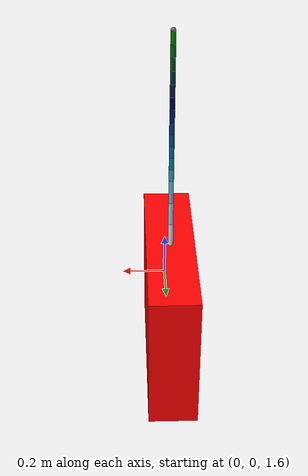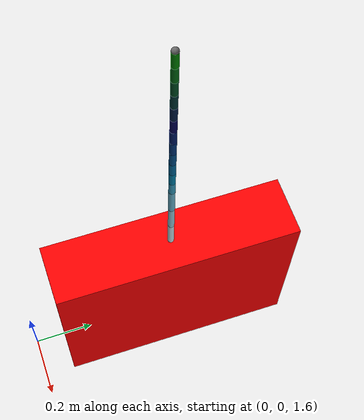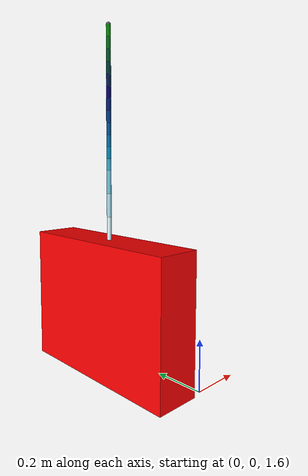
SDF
<sdf version='1.6'>
	<model name='example_rope'>
  <link name="example_rope_capsule_1">
      <pose> 0 0.5 3.0 0 0 0</pose>
      <inertial>
        <pose frame=''>0 0 -0.025 0 0 0</pose>
        <mass>0.02</mass>
        <inertia>
          <ixx>4.666666666666667e-06</ixx>
          <ixy>0</ixy>
          <ixz>0</ixz>
          <iyy>4.666666666666667e-06</iyy>
          <iyz>0</iyz>
          <izz>1.0000000000000002e-06</izz>
        </inertia>
      </inertial>
      <visual name='cylinder'>
        <pose frame=''> 0 0 -0.025 0 0 0 </pose>
        <geometry>
          <cylinder>
          <radius>0.01</radius>
          <length>0.05</length>
          </cylinder>
        </geometry>
        <material>
          <diffuse>0.0 0.5 0.0 1.0</diffuse>
        </material>
      </visual>

      <visual name='ball_1'>
        <pose frame=''> 0 0 0 0 0 0 </pose>
        <geometry>
          <sphere>
          <radius>0.01</radius>
          </sphere>
        </geometry>
        <material>
          <diffuse>0.4 0.4 0.4 1.0</diffuse>
        </material>
      </visual>

      <visual name='ball_2'>
        <pose frame=''> 0 0 -0.05 0 0 0 </pose>
        <geometry>
          <sphere>
          <radius>0.01</radius>
          </sphere>
        </geometry>
        <material>
          <diffuse>0.4 0.4 0.4 1.0</diffuse>
        </material>
      </visual>

      <collision name='example_rope_capsule_1_cylinder'>
        <pose frame=''> 0 0 -0.025 0 0 0 </pose>
        <geometry>
          <cylinder>
          <radius>0.01</radius>
          <length>0.05</length>
          </cylinder>
        </geometry>

        <surface>
          <friction>
          <ode>
            <mu>0.5</mu>
            <mu2>0.5</mu2>
          </ode>
          </friction>
        </surface>
      </collision>

      <!-- TODO: Put collision here -->
  </link>
  <link name="example_rope_capsule_2">
      <pose> 0 0.5 2.95 0 0 0</pose>
      <inertial>
        <pose frame=''>0 0 -0.025 0 0 0</pose>
        <mass>0.02</mass>
        <inertia>
          <ixx>4.666666666666667e-06</ixx>
          <ixy>0</ixy>
          <ixz>0</ixz>
          <iyy>4.666666666666667e-06</iyy>
          <iyz>0</iyz>
          <izz>1.0000000000000002e-06</izz>
        </inertia>
      </inertial>
      <visual name='cylinder'>
        <pose frame=''> 0 0 -0.025 0 0 0 </pose>
        <geometry>
          <cylinder>
          <radius>0.01</radius>
          <length>0.05</length>
          </cylinder>
        </geometry>
        <material>
          <diffuse>0.0 0.4 0.06666666666666667 1.0</diffuse>
        </material>
      </visual>

      <visual name='ball_1'>
        <pose frame=''> 0 0 0 0 0 0 </pose>
        <geometry>
          <sphere>
          <radius>0.01</radius>
          </sphere>
        </geometry>
        <material>
          <diffuse>0.4 0.4 0.4 1.0</diffuse>
        </material>
      </visual>

      <visual name='ball_2'>
        <pose frame=''> 0 0 -0.05 0 0 0 </pose>
        <geometry>
          <sphere>
          <radius>0.01</radius>
          </sphere>
        </geometry>
        <material>
          <diffuse>0.4 0.4 0.4 1.0</diffuse>
        </material>
      </visual>

      <collision name='example_rope_capsule_2_cylinder'>
        <pose frame=''> 0 0 -0.025 0 0 0 </pose>
        <geometry>
          <cylinder>
          <radius>0.01</radius>
          <length>0.05</length>
          </cylinder>
        </geometry>

        <surface>
          <friction>
          <ode>
            <mu>0.5</mu>
            <mu2>0.5</mu2>
          </ode>
          </friction>
        </surface>
      </collision>

      <!-- TODO: Put collision here -->
  </link>
  <link name="example_rope_capsule_1_extra">
    <pose> 0 0.5 2.95 0 0 0</pose>
    <inertial>
      <!-- HACK: inertias are not consistent -->
      <mass>1e-6</mass>
      <inertia>
        <ixx>1e-6</ixx>
        <ixy>0</ixy>
        <ixz>0</ixz>
        <iyy>1e-6</iyy>
        <iyz>0</iyz>
        <izz>1e-6</izz>
      </inertia>
    </inertial>
  </link>
  <joint name="example_rope_capsule_1_example_rope_capsule_2_joint_x" type="revolute">
    <pose> 0 0 0 0 0 0 </pose>
    <child>example_rope_capsule_2</child>
    <parent>example_rope_capsule_1_extra</parent>
    <axis>
      <xyz> 1 0 0 </xyz>
      <limit>
        <effort>0</effort>
        <lower>-1</lower>
        <upper>1</upper>
      </limit>
      <dynamics>
        <damping> 0.001 </damping>
        <friction> 0 </friction>
        <spring_reference> 0 </spring_reference>
        <spring_stiffness> 0 </spring_stiffness>
      </dynamics>
      <use_parent_model_frame>1</use_parent_model_frame>
    </axis>
  </joint>

  <joint name="example_rope_capsule_1_example_rope_capsule_2_joint_y" type="revolute">
    <pose> 0 0 0 0 0 0 </pose>
    <child>example_rope_capsule_1_extra</child>
    <parent>example_rope_capsule_1</parent>
    <axis>
      <xyz> 0 1 0 </xyz>
      <limit>
        <effort>0</effort>
        <lower>-1</lower>
        <upper>1</upper>
      </limit>
      <dynamics>
        <damping> 0.001 </damping>
        <friction> 0 </friction>
        <spring_reference> 0 </spring_reference>
        <spring_stiffness> 0 </spring_stiffness>
      </dynamics>
      <use_parent_model_frame>1</use_parent_model_frame>
    </axis>
  </joint>
  <link name="example_rope_capsule_3">
      <pose> 0 0.5 2.9000000000000004 0 0 0</pose>
      <inertial>
        <pose frame=''>0 0 -0.025 0 0 0</pose>
        <mass>0.02</mass>
        <inertia>
          <ixx>4.666666666666667e-06</ixx>
          <ixy>0</ixy>
          <ixz>0</ixz>
          <iyy>4.666666666666667e-06</iyy>
          <iyz>0</iyz>
          <izz>1.0000000000000002e-06</izz>
        </inertia>
      </inertial>
      <visual name='cylinder'>
        <pose frame=''> 0 0 -0.025 0 0 0 </pose>
        <geometry>
          <cylinder>
          <radius>0.01</radius>
          <length>0.05</length>
          </cylinder>
        </geometry>
        <material>
          <diffuse>0.0 0.3 0.13333333333333333 1.0</diffuse>
        </material>
      </visual>

      <visual name='ball_1'>
        <pose frame=''> 0 0 0 0 0 0 </pose>
        <geometry>
          <sphere>
          <radius>0.01</radius>
          </sphere>
        </geometry>
        <material>
          <diffuse>0.4 0.4 0.4 1.0</diffuse>
        </material>
      </visual>

      <visual name='ball_2'>
        <pose frame=''> 0 0 -0.05 0 0 0 </pose>
        <geometry>
          <sphere>
          <radius>0.01</radius>
          </sphere>
        </geometry>
        <material>
          <diffuse>0.4 0.4 0.4 1.0</diffuse>
        </material>
      </visual>

      <collision name='example_rope_capsule_3_cylinder'>
        <pose frame=''> 0 0 -0.025 0 0 0 </pose>
        <geometry>
          <cylinder>
          <radius>0.01</radius>
          <length>0.05</length>
          </cylinder>
        </geometry>

        <surface>
          <friction>
          <ode>
            <mu>0.5</mu>
            <mu2>0.5</mu2>
          </ode>
          </friction>
        </surface>
      </collision>

      <!-- TODO: Put collision here -->
  </link>
  <link name="example_rope_capsule_2_extra">
    <pose> 0 0.5 2.9000000000000004 0 0 0</pose>
    <inertial>
      <!-- HACK: inertias are not consistent -->
      <mass>1e-6</mass>
      <inertia>
        <ixx>1e-6</ixx>
        <ixy>0</ixy>
        <ixz>0</ixz>
        <iyy>1e-6</iyy>
        <iyz>0</iyz>
        <izz>1e-6</izz>
      </inertia>
    </inertial>
  </link>
  <joint name="example_rope_capsule_2_example_rope_capsule_3_joint_x" type="revolute">
    <pose> 0 0 0 0 0 0 </pose>
    <child>example_rope_capsule_3</child>
    <parent>example_rope_capsule_2_extra</parent>
    <axis>
      <xyz> 1 0 0 </xyz>
      <limit>
        <effort>0</effort>
        <lower>-1</lower>
        <upper>1</upper>
      </limit>
      <dynamics>
        <damping> 0.001 </damping>
        <friction> 0 </friction>
        <spring_reference> 0 </spring_reference>
        <spring_stiffness> 0 </spring_stiffness>
      </dynamics>
      <use_parent_model_frame>1</use_parent_model_frame>
    </axis>
  </joint>

  <joint name="example_rope_capsule_2_example_rope_capsule_3_joint_y" type="revolute">
    <pose> 0 0 0 0 0 0 </pose>
    <child>example_rope_capsule_2_extra</child>
    <parent>example_rope_capsule_2</parent>
    <axis>
      <xyz> 0 1 0 </xyz>
      <limit>
        <effort>0</effort>
        <lower>-1</lower>
        <upper>1</upper>
      </limit>
      <dynamics>
        <damping> 0.001 </damping>
        <friction> 0 </friction>
        <spring_reference> 0 </spring_reference>
        <spring_stiffness> 0 </spring_stiffness>
      </dynamics>
      <use_parent_model_frame>1</use_parent_model_frame>
    </axis>
  </joint>
  <link name="example_rope_capsule_4">
      <pose> 0 0.5 2.8500000000000005 0 0 0</pose>
      <inertial>
        <pose frame=''>0 0 -0.025 0 0 0</pose>
        <mass>0.02</mass>
        <inertia>
          <ixx>4.666666666666667e-06</ixx>
          <ixy>0</ixy>
          <ixz>0</ixz>
          <iyy>4.666666666666667e-06</iyy>
          <iyz>0</iyz>
          <izz>1.0000000000000002e-06</izz>
        </inertia>
      </inertial>
      <visual name='cylinder'>
        <pose frame=''> 0 0 -0.025 0 0 0 </pose>
        <geometry>
          <cylinder>
          <radius>0.01</radius>
          <length>0.05</length>
          </cylinder>
        </geometry>
        <material>
          <diffuse>0.0 0.19999999999999996 0.2 1.0</diffuse>
        </material>
      </visual>

      <visual name='ball_1'>
        <pose frame=''> 0 0 0 0 0 0 </pose>
        <geometry>
          <sphere>
          <radius>0.01</radius>
          </sphere>
        </geometry>
        <material>
          <diffuse>0.4 0.4 0.4 1.0</diffuse>
        </material>
      </visual>

      <visual name='ball_2'>
        <pose frame=''> 0 0 -0.05 0 0 0 </pose>
        <geometry>
          <sphere>
          <radius>0.01</radius>
          </sphere>
        </geometry>
        <material>
          <diffuse>0.4 0.4 0.4 1.0</diffuse>
        </material>
      </visual>

      <collision name='example_rope_capsule_4_cylinder'>
        <pose frame=''> 0 0 -0.025 0 0 0 </pose>
        <geometry>
          <cylinder>
          <radius>0.01</radius>
          <length>0.05</length>
          </cylinder>
        </geometry>

        <surface>
          <friction>
          <ode>
            <mu>0.5</mu>
            <mu2>0.5</mu2>
          </ode>
          </friction>
        </surface>
      </collision>

      <!-- TODO: Put collision here -->
  </link>
  <link name="example_rope_capsule_3_extra">
    <pose> 0 0.5 2.8500000000000005 0 0 0</pose>
    <inertial>
      <!-- HACK: inertias are not consistent -->
      <mass>1e-6</mass>
      <inertia>
        <ixx>1e-6</ixx>
        <ixy>0</ixy>
        <ixz>0</ixz>
        <iyy>1e-6</iyy>
        <iyz>0</iyz>
        <izz>1e-6</izz>
      </inertia>
    </inertial>
  </link>
  <joint name="example_rope_capsule_3_example_rope_capsule_4_joint_x" type="revolute">
    <pose> 0 0 0 0 0 0 </pose>
    <child>example_rope_capsule_4</child>
    <parent>example_rope_capsule_3_extra</parent>
    <axis>
      <xyz> 1 0 0 </xyz>
      <limit>
        <effort>0</effort>
        <lower>-1</lower>
        <upper>1</upper>
      </limit>
      <dynamics>
        <damping> 0.001 </damping>
        <friction> 0 </friction>
        <spring_reference> 0 </spring_reference>
        <spring_stiffness> 0 </spring_stiffness>
      </dynamics>
      <use_parent_model_frame>1</use_parent_model_frame>
    </axis>
  </joint>

  <joint name="example_rope_capsule_3_example_rope_capsule_4_joint_y" type="revolute">
    <pose> 0 0 0 0 0 0 </pose>
    <child>example_rope_capsule_3_extra</child>
    <parent>example_rope_capsule_3</parent>
    <axis>
      <xyz> 0 1 0 </xyz>
      <limit>
        <effort>0</effort>
        <lower>-1</lower>
        <upper>1</upper>
      </limit>
      <dynamics>
        <damping> 0.001 </damping>
        <friction> 0 </friction>
        <spring_reference> 0 </spring_reference>
        <spring_stiffness> 0 </spring_stiffness>
      </dynamics>
      <use_parent_model_frame>1</use_parent_model_frame>
    </axis>
  </joint>
  <link name="example_rope_capsule_5">
      <pose> 0 0.5 2.8000000000000007 0 0 0</pose>
      <inertial>
        <pose frame=''>0 0 -0.025 0 0 0</pose>
        <mass>0.02</mass>
        <inertia>
          <ixx>4.666666666666667e-06</ixx>
          <ixy>0</ixy>
          <ixz>0</ixz>
          <iyy>4.666666666666667e-06</iyy>
          <iyz>0</iyz>
          <izz>1.0000000000000002e-06</izz>
        </inertia>
      </inertial>
      <visual name='cylinder'>
        <pose frame=''> 0 0 -0.025 0 0 0 </pose>
        <geometry>
          <cylinder>
          <radius>0.01</radius>
          <length>0.05</length>
          </cylinder>
        </geometry>
        <material>
          <diffuse>0.0 0.09999999999999998 0.26666666666666666 1.0</diffuse>
        </material>
      </visual>

      <visual name='ball_1'>
        <pose frame=''> 0 0 0 0 0 0 </pose>
        <geometry>
          <sphere>
          <radius>0.01</radius>
          </sphere>
        </geometry>
        <material>
          <diffuse>0.4 0.4 0.4 1.0</diffuse>
        </material>
      </visual>

      <visual name='ball_2'>
        <pose frame=''> 0 0 -0.05 0 0 0 </pose>
        <geometry>
          <sphere>
          <radius>0.01</radius>
          </sphere>
        </geometry>
        <material>
          <diffuse>0.4 0.4 0.4 1.0</diffuse>
        </material>
      </visual>

      <collision name='example_rope_capsule_5_cylinder'>
        <pose frame=''> 0 0 -0.025 0 0 0 </pose>
        <geometry>
          <cylinder>
          <radius>0.01</radius>
          <length>0.05</length>
          </cylinder>
        </geometry>

        <surface>
          <friction>
          <ode>
            <mu>0.5</mu>
            <mu2>0.5</mu2>
          </ode>
          </friction>
        </surface>
      </collision>

      <!-- TODO: Put collision here -->
  </link>
  <link name="example_rope_capsule_4_extra">
    <pose> 0 0.5 2.8000000000000007 0 0 0</pose>
    <inertial>
      <!-- HACK: inertias are not consistent -->
      <mass>1e-6</mass>
      <inertia>
        <ixx>1e-6</ixx>
        <ixy>0</ixy>
        <ixz>0</ixz>
        <iyy>1e-6</iyy>
        <iyz>0</iyz>
        <izz>1e-6</izz>
      </inertia>
    </inertial>
  </link>
  <joint name="example_rope_capsule_4_example_rope_capsule_5_joint_x" type="revolute">
    <pose> 0 0 0 0 0 0 </pose>
    <child>example_rope_capsule_5</child>
    <parent>example_rope_capsule_4_extra</parent>
    <axis>
      <xyz> 1 0 0 </xyz>
      <limit>
        <effort>0</effort>
        <lower>-1</lower>
        <upper>1</upper>
      </limit>
      <dynamics>
        <damping> 0.001 </damping>
        <friction> 0 </friction>
        <spring_reference> 0 </spring_reference>
        <spring_stiffness> 0 </spring_stiffness>
      </dynamics>
      <use_parent_model_frame>1</use_parent_model_frame>
    </axis>
  </joint>

  <joint name="example_rope_capsule_4_example_rope_capsule_5_joint_y" type="revolute">
    <pose> 0 0 0 0 0 0 </pose>
    <child>example_rope_capsule_4_extra</child>
    <parent>example_rope_capsule_4</parent>
    <axis>
      <xyz> 0 1 0 </xyz>
      <limit>
        <effort>0</effort>
        <lower>-1</lower>
        <upper>1</upper>
      </limit>
      <dynamics>
        <damping> 0.001 </damping>
        <friction> 0 </friction>
        <spring_reference> 0 </spring_reference>
        <spring_stiffness> 0 </spring_stiffness>
      </dynamics>
      <use_parent_model_frame>1</use_parent_model_frame>
    </axis>
  </joint>
  <link name="example_rope_capsule_6">
      <pose> 0 0.5 2.750000000000001 0 0 0</pose>
      <inertial>
        <pose frame=''>0 0 -0.025 0 0 0</pose>
        <mass>0.02</mass>
        <inertia>
          <ixx>4.666666666666667e-06</ixx>
          <ixy>0</ixy>
          <ixz>0</ixz>
          <iyy>4.666666666666667e-06</iyy>
          <iyz>0</iyz>
          <izz>1.0000000000000002e-06</izz>
        </inertia>
      </inertial>
      <visual name='cylinder'>
        <pose frame=''> 0 0 -0.025 0 0 0 </pose>
        <geometry>
          <cylinder>
          <radius>0.01</radius>
          <length>0.05</length>
          </cylinder>
        </geometry>
        <material>
          <diffuse>0.0 0.0 0.3333333333333333 1.0</diffuse>
        </material>
      </visual>

      <visual name='ball_1'>
        <pose frame=''> 0 0 0 0 0 0 </pose>
        <geometry>
          <sphere>
          <radius>0.01</radius>
          </sphere>
        </geometry>
        <material>
          <diffuse>0.4 0.4 0.4 1.0</diffuse>
        </material>
      </visual>

      <visual name='ball_2'>
        <pose frame=''> 0 0 -0.05 0 0 0 </pose>
        <geometry>
          <sphere>
          <radius>0.01</radius>
          </sphere>
        </geometry>
        <material>
          <diffuse>0.4 0.4 0.4 1.0</diffuse>
        </material>
      </visual>

      <collision name='example_rope_capsule_6_cylinder'>
        <pose frame=''> 0 0 -0.025 0 0 0 </pose>
        <geometry>
          <cylinder>
          <radius>0.01</radius>
          <length>0.05</length>
          </cylinder>
        </geometry>

        <surface>
          <friction>
          <ode>
            <mu>0.5</mu>
            <mu2>0.5</mu2>
          </ode>
          </friction>
        </surface>
      </collision>

      <!-- TODO: Put collision here -->
  </link>
  <link name="example_rope_capsule_5_extra">
    <pose> 0 0.5 2.750000000000001 0 0 0</pose>
    <inertial>
      <!-- HACK: inertias are not consistent -->
      <mass>1e-6</mass>
      <inertia>
        <ixx>1e-6</ixx>
        <ixy>0</ixy>
        <ixz>0</ixz>
        <iyy>1e-6</iyy>
        <iyz>0</iyz>
        <izz>1e-6</izz>
      </inertia>
    </inertial>
  </link>
  <joint name="example_rope_capsule_5_example_rope_capsule_6_joint_x" type="revolute">
    <pose> 0 0 0 0 0 0 </pose>
    <child>example_rope_capsule_6</child>
    <parent>example_rope_capsule_5_extra</parent>
    <axis>
      <xyz> 1 0 0 </xyz>
      <limit>
        <effort>0</effort>
        <lower>-1</lower>
        <upper>1</upper>
      </limit>
      <dynamics>
        <damping> 0.001 </damping>
        <friction> 0 </friction>
        <spring_reference> 0 </spring_reference>
        <spring_stiffness> 0 </spring_stiffness>
      </dynamics>
      <use_parent_model_frame>1</use_parent_model_frame>
    </axis>
  </joint>

  <joint name="example_rope_capsule_5_example_rope_capsule_6_joint_y" type="revolute">
    <pose> 0 0 0 0 0 0 </pose>
    <child>example_rope_capsule_5_extra</child>
    <parent>example_rope_capsule_5</parent>
    <axis>
      <xyz> 0 1 0 </xyz>
      <limit>
        <effort>0</effort>
        <lower>-1</lower>
        <upper>1</upper>
      </limit>
      <dynamics>
        <damping> 0.001 </damping>
        <friction> 0 </friction>
        <spring_reference> 0 </spring_reference>
        <spring_stiffness> 0 </spring_stiffness>
      </dynamics>
      <use_parent_model_frame>1</use_parent_model_frame>
    </axis>
  </joint>
  <link name="example_rope_capsule_7">
      <pose> 0 0.5 2.700000000000001 0 0 0</pose>
      <inertial>
        <pose frame=''>0 0 -0.025 0 0 0</pose>
        <mass>0.02</mass>
        <inertia>
          <ixx>4.666666666666667e-06</ixx>
          <ixy>0</ixy>
          <ixz>0</ixz>
          <iyy>4.666666666666667e-06</iyy>
          <iyz>0</iyz>
          <izz>1.0000000000000002e-06</izz>
        </inertia>
      </inertial>
      <visual name='cylinder'>
        <pose frame=''> 0 0 -0.025 0 0 0 </pose>
        <geometry>
          <cylinder>
          <radius>0.01</radius>
          <length>0.05</length>
          </cylinder>
        </geometry>
        <material>
          <diffuse>0.0 0.10000000000000009 0.4 1.0</diffuse>
        </material>
      </visual>

      <visual name='ball_1'>
        <pose frame=''> 0 0 0 0 0 0 </pose>
        <geometry>
          <sphere>
          <radius>0.01</radius>
          </sphere>
        </geometry>
        <material>
          <diffuse>0.4 0.4 0.4 1.0</diffuse>
        </material>
      </visual>

      <visual name='ball_2'>
        <pose frame=''> 0 0 -0.05 0 0 0 </pose>
        <geometry>
          <sphere>
          <radius>0.01</radius>
          </sphere>
        </geometry>
        <material>
          <diffuse>0.4 0.4 0.4 1.0</diffuse>
        </material>
      </visual>

      <collision name='example_rope_capsule_7_cylinder'>
        <pose frame=''> 0 0 -0.025 0 0 0 </pose>
        <geometry>
          <cylinder>
          <radius>0.01</radius>
          <length>0.05</length>
          </cylinder>
        </geometry>

        <surface>
          <friction>
          <ode>
            <mu>0.5</mu>
            <mu2>0.5</mu2>
          </ode>
          </friction>
        </surface>
      </collision>

      <!-- TODO: Put collision here -->
  </link>
  <link name="example_rope_capsule_6_extra">
    <pose> 0 0.5 2.700000000000001 0 0 0</pose>
    <inertial>
      <!-- HACK: inertias are not consistent -->
      <mass>1e-6</mass>
      <inertia>
        <ixx>1e-6</ixx>
        <ixy>0</ixy>
        <ixz>0</ixz>
        <iyy>1e-6</iyy>
        <iyz>0</iyz>
        <izz>1e-6</izz>
      </inertia>
    </inertial>
  </link>
  <joint name="example_rope_capsule_6_example_rope_capsule_7_joint_x" type="revolute">
    <pose> 0 0 0 0 0 0 </pose>
    <child>example_rope_capsule_7</child>
    <parent>example_rope_capsule_6_extra</parent>
    <axis>
      <xyz> 1 0 0 </xyz>
      <limit>
        <effort>0</effort>
        <lower>-1</lower>
        <upper>1</upper>
      </limit>
      <dynamics>
        <damping> 0.001 </damping>
        <friction> 0 </friction>
        <spring_reference> 0 </spring_reference>
        <spring_stiffness> 0 </spring_stiffness>
      </dynamics>
      <use_parent_model_frame>1</use_parent_model_frame>
    </axis>
  </joint>

  <joint name="example_rope_capsule_6_example_rope_capsule_7_joint_y" type="revolute">
    <pose> 0 0 0 0 0 0 </pose>
    <child>example_rope_capsule_6_extra</child>
    <parent>example_rope_capsule_6</parent>
    <axis>
      <xyz> 0 1 0 </xyz>
      <limit>
        <effort>0</effort>
        <lower>-1</lower>
        <upper>1</upper>
      </limit>
      <dynamics>
        <damping> 0.001 </damping>
        <friction> 0 </friction>
        <spring_reference> 0 </spring_reference>
        <spring_stiffness> 0 </spring_stiffness>
      </dynamics>
      <use_parent_model_frame>1</use_parent_model_frame>
    </axis>
  </joint>
  <link name="example_rope_capsule_8">
      <pose> 0 0.5 2.6500000000000012 0 0 0</pose>
      <inertial>
        <pose frame=''>0 0 -0.025 0 0 0</pose>
        <mass>0.02</mass>
        <inertia>
          <ixx>4.666666666666667e-06</ixx>
          <ixy>0</ixy>
          <ixz>0</ixz>
          <iyy>4.666666666666667e-06</iyy>
          <iyz>0</iyz>
          <izz>1.0000000000000002e-06</izz>
        </inertia>
      </inertial>
      <visual name='cylinder'>
        <pose frame=''> 0 0 -0.025 0 0 0 </pose>
        <geometry>
          <cylinder>
          <radius>0.01</radius>
          <length>0.05</length>
          </cylinder>
        </geometry>
        <material>
          <diffuse>0.0 0.19999999999999996 0.4666666666666667 1.0</diffuse>
        </material>
      </visual>

      <visual name='ball_1'>
        <pose frame=''> 0 0 0 0 0 0 </pose>
        <geometry>
          <sphere>
          <radius>0.01</radius>
          </sphere>
        </geometry>
        <material>
          <diffuse>0.4 0.4 0.4 1.0</diffuse>
        </material>
      </visual>

      <visual name='ball_2'>
        <pose frame=''> 0 0 -0.05 0 0 0 </pose>
        <geometry>
          <sphere>
          <radius>0.01</radius>
          </sphere>
        </geometry>
        <material>
          <diffuse>0.4 0.4 0.4 1.0</diffuse>
        </material>
      </visual>

      <collision name='example_rope_capsule_8_cylinder'>
        <pose frame=''> 0 0 -0.025 0 0 0 </pose>
        <geometry>
          <cylinder>
          <radius>0.01</radius>
          <length>0.05</length>
          </cylinder>
        </geometry>

        <surface>
          <friction>
          <ode>
            <mu>0.5</mu>
            <mu2>0.5</mu2>
          </ode>
          </friction>
        </surface>
      </collision>

      <!-- TODO: Put collision here -->
  </link>
  <link name="example_rope_capsule_7_extra">
    <pose> 0 0.5 2.6500000000000012 0 0 0</pose>
    <inertial>
      <!-- HACK: inertias are not consistent -->
      <mass>1e-6</mass>
      <inertia>
        <ixx>1e-6</ixx>
        <ixy>0</ixy>
        <ixz>0</ixz>
        <iyy>1e-6</iyy>
        <iyz>0</iyz>
        <izz>1e-6</izz>
      </inertia>
    </inertial>
  </link>
  <joint name="example_rope_capsule_7_example_rope_capsule_8_joint_x" type="revolute">
    <pose> 0 0 0 0 0 0 </pose>
    <child>example_rope_capsule_8</child>
    <parent>example_rope_capsule_7_extra</parent>
    <axis>
      <xyz> 1 0 0 </xyz>
      <limit>
        <effort>0</effort>
        <lower>-1</lower>
        <upper>1</upper>
      </limit>
      <dynamics>
        <damping> 0.001 </damping>
        <friction> 0 </friction>
        <spring_reference> 0 </spring_reference>
        <spring_stiffness> 0 </spring_stiffness>
      </dynamics>
      <use_parent_model_frame>1</use_parent_model_frame>
    </axis>
  </joint>

  <joint name="example_rope_capsule_7_example_rope_capsule_8_joint_y" type="revolute">
    <pose> 0 0 0 0 0 0 </pose>
    <child>example_rope_capsule_7_extra</child>
    <parent>example_rope_capsule_7</parent>
    <axis>
      <xyz> 0 1 0 </xyz>
      <limit>
        <effort>0</effort>
        <lower>-1</lower>
        <upper>1</upper>
      </limit>
      <dynamics>
        <damping> 0.001 </damping>
        <friction> 0 </friction>
        <spring_reference> 0 </spring_reference>
        <spring_stiffness> 0 </spring_stiffness>
      </dynamics>
      <use_parent_model_frame>1</use_parent_model_frame>
    </axis>
  </joint>
  <link name="example_rope_capsule_9">
      <pose> 0 0.5 2.6000000000000014 0 0 0</pose>
      <inertial>
        <pose frame=''>0 0 -0.025 0 0 0</pose>
        <mass>0.02</mass>
        <inertia>
          <ixx>4.666666666666667e-06</ixx>
          <ixy>0</ixy>
          <ixz>0</ixz>
          <iyy>4.666666666666667e-06</iyy>
          <iyz>0</iyz>
          <izz>1.0000000000000002e-06</izz>
        </inertia>
      </inertial>
      <visual name='cylinder'>
        <pose frame=''> 0 0 -0.025 0 0 0 </pose>
        <geometry>
          <cylinder>
          <radius>0.01</radius>
          <length>0.05</length>
          </cylinder>
        </geometry>
        <material>
          <diffuse>0.0 0.30000000000000004 0.5333333333333333 1.0</diffuse>
        </material>
      </visual>

      <visual name='ball_1'>
        <pose frame=''> 0 0 0 0 0 0 </pose>
        <geometry>
          <sphere>
          <radius>0.01</radius>
          </sphere>
        </geometry>
        <material>
          <diffuse>0.4 0.4 0.4 1.0</diffuse>
        </material>
      </visual>

      <visual name='ball_2'>
        <pose frame=''> 0 0 -0.05 0 0 0 </pose>
        <geometry>
          <sphere>
          <radius>0.01</radius>
          </sphere>
        </geometry>
        <material>
          <diffuse>0.4 0.4 0.4 1.0</diffuse>
        </material>
      </visual>

      <collision name='example_rope_capsule_9_cylinder'>
        <pose frame=''> 0 0 -0.025 0 0 0 </pose>
        <geometry>
          <cylinder>
          <radius>0.01</radius>
          <length>0.05</length>
          </cylinder>
        </geometry>

        <surface>
          <friction>
          <ode>
            <mu>0.5</mu>
            <mu2>0.5</mu2>
          </ode>
          </friction>
        </surface>
      </collision>

      <!-- TODO: Put collision here -->
  </link>
  <link name="example_rope_capsule_8_extra">
    <pose> 0 0.5 2.6000000000000014 0 0 0</pose>
    <inertial>
      <!-- HACK: inertias are not consistent -->
      <mass>1e-6</mass>
      <inertia>
        <ixx>1e-6</ixx>
        <ixy>0</ixy>
        <ixz>0</ixz>
        <iyy>1e-6</iyy>
        <iyz>0</iyz>
        <izz>1e-6</izz>
      </inertia>
    </inertial>
  </link>
  <joint name="example_rope_capsule_8_example_rope_capsule_9_joint_x" type="revolute">
    <pose> 0 0 0 0 0 0 </pose>
    <child>example_rope_capsule_9</child>
    <parent>example_rope_capsule_8_extra</parent>
    <axis>
      <xyz> 1 0 0 </xyz>
      <limit>
        <effort>0</effort>
        <lower>-1</lower>
        <upper>1</upper>
      </limit>
      <dynamics>
        <damping> 0.001 </damping>
        <friction> 0 </friction>
        <spring_reference> 0 </spring_reference>
        <spring_stiffness> 0 </spring_stiffness>
      </dynamics>
      <use_parent_model_frame>1</use_parent_model_frame>
    </axis>
  </joint>

  <joint name="example_rope_capsule_8_example_rope_capsule_9_joint_y" type="revolute">
    <pose> 0 0 0 0 0 0 </pose>
    <child>example_rope_capsule_8_extra</child>
    <parent>example_rope_capsule_8</parent>
    <axis>
      <xyz> 0 1 0 </xyz>
      <limit>
        <effort>0</effort>
        <lower>-1</lower>
        <upper>1</upper>
      </limit>
      <dynamics>
        <damping> 0.001 </damping>
        <friction> 0 </friction>
        <spring_reference> 0 </spring_reference>
        <spring_stiffness> 0 </spring_stiffness>
      </dynamics>
      <use_parent_model_frame>1</use_parent_model_frame>
    </axis>
  </joint>
  <link name="example_rope_capsule_10">
      <pose> 0 0.5 2.5500000000000016 0 0 0</pose>
      <inertial>
        <pose frame=''>0 0 -0.025 0 0 0</pose>
        <mass>0.02</mass>
        <inertia>
          <ixx>4.666666666666667e-06</ixx>
          <ixy>0</ixy>
          <ixz>0</ixz>
          <iyy>4.666666666666667e-06</iyy>
          <iyz>0</iyz>
          <izz>1.0000000000000002e-06</izz>
        </inertia>
      </inertial>
      <visual name='cylinder'>
        <pose frame=''> 0 0 -0.025 0 0 0 </pose>
        <geometry>
          <cylinder>
          <radius>0.01</radius>
          <length>0.05</length>
          </cylinder>
        </geometry>
        <material>
          <diffuse>0.0 0.3999999999999999 0.6 1.0</diffuse>
        </material>
      </visual>

      <visual name='ball_1'>
        <pose frame=''> 0 0 0 0 0 0 </pose>
        <geometry>
          <sphere>
          <radius>0.01</radius>
          </sphere>
        </geometry>
        <material>
          <diffuse>0.4 0.4 0.4 1.0</diffuse>
        </material>
      </visual>

      <visual name='ball_2'>
        <pose frame=''> 0 0 -0.05 0 0 0 </pose>
        <geometry>
          <sphere>
          <radius>0.01</radius>
          </sphere>
        </geometry>
        <material>
          <diffuse>0.4 0.4 0.4 1.0</diffuse>
        </material>
      </visual>

      <collision name='example_rope_capsule_10_cylinder'>
        <pose frame=''> 0 0 -0.025 0 0 0 </pose>
        <geometry>
          <cylinder>
          <radius>0.01</radius>
          <length>0.05</length>
          </cylinder>
        </geometry>

        <surface>
          <friction>
          <ode>
            <mu>0.5</mu>
            <mu2>0.5</mu2>
          </ode>
          </friction>
        </surface>
      </collision>

      <!-- TODO: Put collision here -->
  </link>
  <link name="example_rope_capsule_9_extra">
    <pose> 0 0.5 2.5500000000000016 0 0 0</pose>
    <inertial>
      <!-- HACK: inertias are not consistent -->
      <mass>1e-6</mass>
      <inertia>
        <ixx>1e-6</ixx>
        <ixy>0</ixy>
        <ixz>0</ixz>
        <iyy>1e-6</iyy>
        <iyz>0</iyz>
        <izz>1e-6</izz>
      </inertia>
    </inertial>
  </link>
  <joint name="example_rope_capsule_9_example_rope_capsule_10_joint_x" type="revolute">
    <pose> 0 0 0 0 0 0 </pose>
    <child>example_rope_capsule_10</child>
    <parent>example_rope_capsule_9_extra</parent>
    <axis>
      <xyz> 1 0 0 </xyz>
      <limit>
        <effort>0</effort>
        <lower>-1</lower>
        <upper>1</upper>
      </limit>
      <dynamics>
        <damping> 0.001 </damping>
        <friction> 0 </friction>
        <spring_reference> 0 </spring_reference>
        <spring_stiffness> 0 </spring_stiffness>
      </dynamics>
      <use_parent_model_frame>1</use_parent_model_frame>
    </axis>
  </joint>

  <joint name="example_rope_capsule_9_example_rope_capsule_10_joint_y" type="revolute">
    <pose> 0 0 0 0 0 0 </pose>
    <child>example_rope_capsule_9_extra</child>
    <parent>example_rope_capsule_9</parent>
    <axis>
      <xyz> 0 1 0 </xyz>
      <limit>
        <effort>0</effort>
        <lower>-1</lower>
        <upper>1</upper>
      </limit>
      <dynamics>
        <damping> 0.001 </damping>
        <friction> 0 </friction>
        <spring_reference> 0 </spring_reference>
        <spring_stiffness> 0 </spring_stiffness>
      </dynamics>
      <use_parent_model_frame>1</use_parent_model_frame>
    </axis>
  </joint>
  <link name="example_rope_capsule_11">
      <pose> 0 0.5 2.5000000000000018 0 0 0</pose>
      <inertial>
        <pose frame=''>0 0 -0.025 0 0 0</pose>
        <mass>0.02</mass>
        <inertia>
          <ixx>4.666666666666667e-06</ixx>
          <ixy>0</ixy>
          <ixz>0</ixz>
          <iyy>4.666666666666667e-06</iyy>
          <iyz>0</iyz>
          <izz>1.0000000000000002e-06</izz>
        </inertia>
      </inertial>
      <visual name='cylinder'>
        <pose frame=''> 0 0 -0.025 0 0 0 </pose>
        <geometry>
          <cylinder>
          <radius>0.01</radius>
          <length>0.05</length>
          </cylinder>
        </geometry>
        <material>
          <diffuse>0.0 0.5 0.6666666666666666 1.0</diffuse>
        </material>
      </visual>

      <visual name='ball_1'>
        <pose frame=''> 0 0 0 0 0 0 </pose>
        <geometry>
          <sphere>
          <radius>0.01</radius>
          </sphere>
        </geometry>
        <material>
          <diffuse>0.4 0.4 0.4 1.0</diffuse>
        </material>
      </visual>

      <visual name='ball_2'>
        <pose frame=''> 0 0 -0.05 0 0 0 </pose>
        <geometry>
          <sphere>
          <radius>0.01</radius>
          </sphere>
        </geometry>
        <material>
          <diffuse>0.4 0.4 0.4 1.0</diffuse>
        </material>
      </visual>

      <collision name='example_rope_capsule_11_cylinder'>
        <pose frame=''> 0 0 -0.025 0 0 0 </pose>
        <geometry>
          <cylinder>
          <radius>0.01</radius>
          <length>0.05</length>
          </cylinder>
        </geometry>

        <surface>
          <friction>
          <ode>
            <mu>0.5</mu>
            <mu2>0.5</mu2>
          </ode>
          </friction>
        </surface>
      </collision>

      <!-- TODO: Put collision here -->
  </link>
  <link name="example_rope_capsule_10_extra">
    <pose> 0 0.5 2.5000000000000018 0 0 0</pose>
    <inertial>
      <!-- HACK: inertias are not consistent -->
      <mass>1e-6</mass>
      <inertia>
        <ixx>1e-6</ixx>
        <ixy>0</ixy>
        <ixz>0</ixz>
        <iyy>1e-6</iyy>
        <iyz>0</iyz>
        <izz>1e-6</izz>
      </inertia>
    </inertial>
  </link>
  <joint name="example_rope_capsule_10_example_rope_capsule_11_joint_x" type="revolute">
    <pose> 0 0 0 0 0 0 </pose>
    <child>example_rope_capsule_11</child>
    <parent>example_rope_capsule_10_extra</parent>
    <axis>
      <xyz> 1 0 0 </xyz>
      <limit>
        <effort>0</effort>
        <lower>-1</lower>
        <upper>1</upper>
      </limit>
      <dynamics>
        <damping> 0.001 </damping>
        <friction> 0 </friction>
        <spring_reference> 0 </spring_reference>
        <spring_stiffness> 0 </spring_stiffness>
      </dynamics>
      <use_parent_model_frame>1</use_parent_model_frame>
    </axis>
  </joint>

  <joint name="example_rope_capsule_10_example_rope_capsule_11_joint_y" type="revolute">
    <pose> 0 0 0 0 0 0 </pose>
    <child>example_rope_capsule_10_extra</child>
    <parent>example_rope_capsule_10</parent>
    <axis>
      <xyz> 0 1 0 </xyz>
      <limit>
        <effort>0</effort>
        <lower>-1</lower>
        <upper>1</upper>
      </limit>
      <dynamics>
        <damping> 0.001 </damping>
        <friction> 0 </friction>
        <spring_reference> 0 </spring_reference>
        <spring_stiffness> 0 </spring_stiffness>
      </dynamics>
      <use_parent_model_frame>1</use_parent_model_frame>
    </axis>
  </joint>
  <link name="example_rope_capsule_12">
      <pose> 0 0.5 2.450000000000002 0 0 0</pose>
      <inertial>
        <pose frame=''>0 0 -0.025 0 0 0</pose>
        <mass>0.02</mass>
        <inertia>
          <ixx>4.666666666666667e-06</ixx>
          <ixy>0</ixy>
          <ixz>0</ixz>
          <iyy>4.666666666666667e-06</iyy>
          <iyz>0</iyz>
          <izz>1.0000000000000002e-06</izz>
        </inertia>
      </inertial>
      <visual name='cylinder'>
        <pose frame=''> 0 0 -0.025 0 0 0 </pose>
        <geometry>
          <cylinder>
          <radius>0.01</radius>
          <length>0.05</length>
          </cylinder>
        </geometry>
        <material>
          <diffuse>0.19999999999999973 0.5999999999999999 0.7333333333333333 1.0</diffuse>
        </material>
      </visual>

      <visual name='ball_1'>
        <pose frame=''> 0 0 0 0 0 0 </pose>
        <geometry>
          <sphere>
          <radius>0.01</radius>
          </sphere>
        </geometry>
        <material>
          <diffuse>0.4 0.4 0.4 1.0</diffuse>
        </material>
      </visual>

      <visual name='ball_2'>
        <pose frame=''> 0 0 -0.05 0 0 0 </pose>
        <geometry>
          <sphere>
          <radius>0.01</radius>
          </sphere>
        </geometry>
        <material>
          <diffuse>0.4 0.4 0.4 1.0</diffuse>
        </material>
      </visual>

      <collision name='example_rope_capsule_12_cylinder'>
        <pose frame=''> 0 0 -0.025 0 0 0 </pose>
        <geometry>
          <cylinder>
          <radius>0.01</radius>
          <length>0.05</length>
          </cylinder>
        </geometry>

        <surface>
          <friction>
          <ode>
            <mu>0.5</mu>
            <mu2>0.5</mu2>
          </ode>
          </friction>
        </surface>
      </collision>

      <!-- TODO: Put collision here -->
  </link>
  <link name="example_rope_capsule_11_extra">
    <pose> 0 0.5 2.450000000000002 0 0 0</pose>
    <inertial>
      <!-- HACK: inertias are not consistent -->
      <mass>1e-6</mass>
      <inertia>
        <ixx>1e-6</ixx>
        <ixy>0</ixy>
        <ixz>0</ixz>
        <iyy>1e-6</iyy>
        <iyz>0</iyz>
        <izz>1e-6</izz>
      </inertia>
    </inertial>
  </link>
  <joint name="example_rope_capsule_11_example_rope_capsule_12_joint_x" type="revolute">
    <pose> 0 0 0 0 0 0 </pose>
    <child>example_rope_capsule_12</child>
    <parent>example_rope_capsule_11_extra</parent>
    <axis>
      <xyz> 1 0 0 </xyz>
      <limit>
        <effort>0</effort>
        <lower>-1</lower>
        <upper>1</upper>
      </limit>
      <dynamics>
        <damping> 0.001 </damping>
        <friction> 0 </friction>
        <spring_reference> 0 </spring_reference>
        <spring_stiffness> 0 </spring_stiffness>
      </dynamics>
      <use_parent_model_frame>1</use_parent_model_frame>
    </axis>
  </joint>

  <joint name="example_rope_capsule_11_example_rope_capsule_12_joint_y" type="revolute">
    <pose> 0 0 0 0 0 0 </pose>
    <child>example_rope_capsule_11_extra</child>
    <parent>example_rope_capsule_11</parent>
    <axis>
      <xyz> 0 1 0 </xyz>
      <limit>
        <effort>0</effort>
        <lower>-1</lower>
        <upper>1</upper>
      </limit>
      <dynamics>
        <damping> 0.001 </damping>
        <friction> 0 </friction>
        <spring_reference> 0 </spring_reference>
        <spring_stiffness> 0 </spring_stiffness>
      </dynamics>
      <use_parent_model_frame>1</use_parent_model_frame>
    </axis>
  </joint>
  <link name="example_rope_capsule_13">
      <pose> 0 0.5 2.400000000000002 0 0 0</pose>
      <inertial>
        <pose frame=''>0 0 -0.05 0 0 0</pose>
        <mass>0.02</mass>
        <inertia>
          <ixx>1.716666666666667e-05</ixx>
          <ixy>0</ixy>
          <ixz>0</ixz>
          <iyy>1.716666666666667e-05</iyy>
          <iyz>0</iyz>
          <izz>1.0000000000000002e-06</izz>
        </inertia>
      </inertial>
      <visual name='cylinder'>
        <pose frame=''> 0 0 -0.05 0 0 0 </pose>
        <geometry>
          <cylinder>
          <radius>0.01</radius>
          <length>0.1</length>
          </cylinder>
        </geometry>
        <material>
          <diffuse>0.40000000000000036 0.7000000000000002 0.8 1.0</diffuse>
        </material>
      </visual>

      <visual name='ball_1'>
        <pose frame=''> 0 0 0 0 0 0 </pose>
        <geometry>
          <sphere>
          <radius>0.01</radius>
          </sphere>
        </geometry>
        <material>
          <diffuse>0.4 0.4 0.4 1.0</diffuse>
        </material>
      </visual>

      <visual name='ball_2'>
        <pose frame=''> 0 0 -0.1 0 0 0 </pose>
        <geometry>
          <sphere>
          <radius>0.01</radius>
          </sphere>
        </geometry>
        <material>
          <diffuse>0.4 0.4 0.4 1.0</diffuse>
        </material>
      </visual>

      <collision name='example_rope_capsule_13_cylinder'>
        <pose frame=''> 0 0 -0.05 0 0 0 </pose>
        <geometry>
          <cylinder>
          <radius>0.01</radius>
          <length>0.1</length>
          </cylinder>
        </geometry>

        <surface>
          <friction>
          <ode>
            <mu>0.5</mu>
            <mu2>0.5</mu2>
          </ode>
          </friction>
        </surface>
      </collision>

      <!-- TODO: Put collision here -->
  </link>
  <link name="example_rope_capsule_12_extra">
    <pose> 0 0.5 2.400000000000002 0 0 0</pose>
    <inertial>
      <!-- HACK: inertias are not consistent -->
      <mass>1e-6</mass>
      <inertia>
        <ixx>1e-6</ixx>
        <ixy>0</ixy>
        <ixz>0</ixz>
        <iyy>1e-6</iyy>
        <iyz>0</iyz>
        <izz>1e-6</izz>
      </inertia>
    </inertial>
  </link>
  <joint name="example_rope_capsule_12_example_rope_capsule_13_joint_x" type="revolute">
    <pose> 0 0 0 0 0 0 </pose>
    <child>example_rope_capsule_13</child>
    <parent>example_rope_capsule_12_extra</parent>
    <axis>
      <xyz> 1 0 0 </xyz>
      <limit>
        <effort>0</effort>
        <lower>-1</lower>
        <upper>1</upper>
      </limit>
      <dynamics>
        <damping> 0.001 </damping>
        <friction> 0 </friction>
        <spring_reference> 0 </spring_reference>
        <spring_stiffness> 0 </spring_stiffness>
      </dynamics>
      <use_parent_model_frame>1</use_parent_model_frame>
    </axis>
  </joint>

  <joint name="example_rope_capsule_12_example_rope_capsule_13_joint_y" type="revolute">
    <pose> 0 0 0 0 0 0 </pose>
    <child>example_rope_capsule_12_extra</child>
    <parent>example_rope_capsule_12</parent>
    <axis>
      <xyz> 0 1 0 </xyz>
      <limit>
        <effort>0</effort>
        <lower>-1</lower>
        <upper>1</upper>
      </limit>
      <dynamics>
        <damping> 0.001 </damping>
        <friction> 0 </friction>
        <spring_reference> 0 </spring_reference>
        <spring_stiffness> 0 </spring_stiffness>
      </dynamics>
      <use_parent_model_frame>1</use_parent_model_frame>
    </axis>
  </joint>
  <link name="example_rope_capsule_14">
      <pose> 0 0.5 2.300000000000002 0 0 0</pose>
      <inertial>
        <pose frame=''>0 0 -0.05 0 0 0</pose>
        <mass>0.02</mass>
        <inertia>
          <ixx>1.716666666666667e-05</ixx>
          <ixy>0</ixy>
          <ixz>0</ixz>
          <iyy>1.716666666666667e-05</iyy>
          <iyz>0</iyz>
          <izz>1.0000000000000002e-06</izz>
        </inertia>
      </inertial>
      <visual name='cylinder'>
        <pose frame=''> 0 0 -0.05 0 0 0 </pose>
        <geometry>
          <cylinder>
          <radius>0.01</radius>
          <length>0.1</length>
          </cylinder>
        </geometry>
        <material>
          <diffuse>0.6000000000000001 0.8 0.8666666666666667 1.0</diffuse>
        </material>
      </visual>

      <visual name='ball_1'>
        <pose frame=''> 0 0 0 0 0 0 </pose>
        <geometry>
          <sphere>
          <radius>0.01</radius>
          </sphere>
        </geometry>
        <material>
          <diffuse>0.4 0.4 0.4 1.0</diffuse>
        </material>
      </visual>

      <visual name='ball_2'>
        <pose frame=''> 0 0 -0.1 0 0 0 </pose>
        <geometry>
          <sphere>
          <radius>0.01</radius>
          </sphere>
        </geometry>
        <material>
          <diffuse>0.4 0.4 0.4 1.0</diffuse>
        </material>
      </visual>

      <collision name='example_rope_capsule_14_cylinder'>
        <pose frame=''> 0 0 -0.05 0 0 0 </pose>
        <geometry>
          <cylinder>
          <radius>0.01</radius>
          <length>0.1</length>
          </cylinder>
        </geometry>

        <surface>
          <friction>
          <ode>
            <mu>0.5</mu>
            <mu2>0.5</mu2>
          </ode>
          </friction>
        </surface>
      </collision>

      <!-- TODO: Put collision here -->
  </link>
  <link name="example_rope_capsule_13_extra">
    <pose> 0 0.5 2.300000000000002 0 0 0</pose>
    <inertial>
      <!-- HACK: inertias are not consistent -->
      <mass>1e-6</mass>
      <inertia>
        <ixx>1e-6</ixx>
        <ixy>0</ixy>
        <ixz>0</ixz>
        <iyy>1e-6</iyy>
        <iyz>0</iyz>
        <izz>1e-6</izz>
      </inertia>
    </inertial>
  </link>
  <joint name="example_rope_capsule_13_example_rope_capsule_14_joint_x" type="revolute">
    <pose> 0 0 0 0 0 0 </pose>
    <child>example_rope_capsule_14</child>
    <parent>example_rope_capsule_13_extra</parent>
    <axis>
      <xyz> 1 0 0 </xyz>
      <limit>
        <effort>0</effort>
        <lower>-1</lower>
        <upper>1</upper>
      </limit>
      <dynamics>
        <damping> 0.001 </damping>
        <friction> 0 </friction>
        <spring_reference> 0 </spring_reference>
        <spring_stiffness> 0 </spring_stiffness>
      </dynamics>
      <use_parent_model_frame>1</use_parent_model_frame>
    </axis>
  </joint>

  <joint name="example_rope_capsule_13_example_rope_capsule_14_joint_y" type="revolute">
    <pose> 0 0 0 0 0 0 </pose>
    <child>example_rope_capsule_13_extra</child>
    <parent>example_rope_capsule_13</parent>
    <axis>
      <xyz> 0 1 0 </xyz>
      <limit>
        <effort>0</effort>
        <lower>-1</lower>
        <upper>1</upper>
      </limit>
      <dynamics>
        <damping> 0.001 </damping>
        <friction> 0 </friction>
        <spring_reference> 0 </spring_reference>
        <spring_stiffness> 0 </spring_stiffness>
      </dynamics>
      <use_parent_model_frame>1</use_parent_model_frame>
    </axis>
  </joint>
  <link name="example_rope_capsule_15">
      <pose> 0 0.5 2.200000000000002 0 0 0</pose>
      <inertial>
        <pose frame=''>0 0 -0.05 0 0 0</pose>
        <mass>0.02</mass>
        <inertia>
          <ixx>1.716666666666667e-05</ixx>
          <ixy>0</ixy>
          <ixz>0</ixz>
          <iyy>1.716666666666667e-05</iyy>
          <iyz>0</iyz>
          <izz>1.0000000000000002e-06</izz>
        </inertia>
      </inertial>
      <visual name='cylinder'>
        <pose frame=''> 0 0 -0.05 0 0 0 </pose>
        <geometry>
          <cylinder>
          <radius>0.01</radius>
          <length>0.1</length>
          </cylinder>
        </geometry>
        <material>
          <diffuse>0.7999999999999998 0.8999999999999999 0.9333333333333333 1.0</diffuse>
        </material>
      </visual>

      <visual name='ball_1'>
        <pose frame=''> 0 0 0 0 0 0 </pose>
        <geometry>
          <sphere>
          <radius>0.01</radius>
          </sphere>
        </geometry>
        <material>
          <diffuse>0.4 0.4 0.4 1.0</diffuse>
        </material>
      </visual>

      <visual name='ball_2'>
        <pose frame=''> 0 0 -0.1 0 0 0 </pose>
        <geometry>
          <sphere>
          <radius>0.01</radius>
          </sphere>
        </geometry>
        <material>
          <diffuse>0.4 0.4 0.4 1.0</diffuse>
        </material>
      </visual>

      <collision name='example_rope_capsule_15_cylinder'>
        <pose frame=''> 0 0 -0.05 0 0 0 </pose>
        <geometry>
          <cylinder>
          <radius>0.01</radius>
          <length>0.1</length>
          </cylinder>
        </geometry>

        <surface>
          <friction>
          <ode>
            <mu>0.5</mu>
            <mu2>0.5</mu2>
          </ode>
          </friction>
        </surface>
      </collision>

      <!-- TODO: Put collision here -->
  </link>
  <link name="example_rope_capsule_14_extra">
    <pose> 0 0.5 2.200000000000002 0 0 0</pose>
    <inertial>
      <!-- HACK: inertias are not consistent -->
      <mass>1e-6</mass>
      <inertia>
        <ixx>1e-6</ixx>
        <ixy>0</ixy>
        <ixz>0</ixz>
        <iyy>1e-6</iyy>
        <iyz>0</iyz>
        <izz>1e-6</izz>
      </inertia>
    </inertial>
  </link>
  <joint name="example_rope_capsule_14_example_rope_capsule_15_joint_x" type="revolute">
    <pose> 0 0 0 0 0 0 </pose>
    <child>example_rope_capsule_15</child>
    <parent>example_rope_capsule_14_extra</parent>
    <axis>
      <xyz> 1 0 0 </xyz>
      <limit>
        <effort>0</effort>
        <lower>-1</lower>
        <upper>1</upper>
      </limit>
      <dynamics>
        <damping> 0.001 </damping>
        <friction> 0 </friction>
        <spring_reference> 0 </spring_reference>
        <spring_stiffness> 0 </spring_stiffness>
      </dynamics>
      <use_parent_model_frame>1</use_parent_model_frame>
    </axis>
  </joint>

  <joint name="example_rope_capsule_14_example_rope_capsule_15_joint_y" type="revolute">
    <pose> 0 0 0 0 0 0 </pose>
    <child>example_rope_capsule_14_extra</child>
    <parent>example_rope_capsule_14</parent>
    <axis>
      <xyz> 0 1 0 </xyz>
      <limit>
        <effort>0</effort>
        <lower>-1</lower>
        <upper>1</upper>
      </limit>
      <dynamics>
        <damping> 0.001 </damping>
        <friction> 0 </friction>
        <spring_reference> 0 </spring_reference>
        <spring_stiffness> 0 </spring_stiffness>
      </dynamics>
      <use_parent_model_frame>1</use_parent_model_frame>
    </axis>
  </joint>
<link name="example_rope_brick">
<pose>0 0.5 1.8000000000000014 0 0 0</pose>
    <inertial>
        <mass>300.0</mass>
        <inertia>
            <ixx>0.8333333333333333</ixx>
            <iyy>0.3333333333333333</iyy>
            <izz>0.5666666666666668</izz>
            <ixy>0</ixy>
            <ixz>0</ixz>
            <iyz>0</iyz>
        </inertia>
    </inertial>
    <collision name="example_rope_brick_collision">
        <geometry>
            <box>
                <size>0.2 0.8 0.6</size>
            </box>
        </geometry>
    </collision>
    <visual name="example_rope_brick_visual">
        <geometry>
            <box>
                <size>0.2 0.8 0.6</size>
            </box>
        </geometry>
        <material>
            <ambient>1 0 0 1</ambient>
        </material>
    </visual>
</link>

  <link name="example_rope_capsule_15_extraLINK">
    <pose> 0 0.5 0.6 0 0 0</pose>
    <inertial>
      <!-- HACK: inertias are not consistent -->
      <mass>1e-6</mass>
      <inertia>
        <ixx>1e-6</ixx>
        <ixy>0</ixy>
        <ixz>0</ixz>
        <iyy>1e-6</iyy>
        <iyz>0</iyz>
        <izz>1e-6</izz>
      </inertia>
    </inertial>
  </link>

  <joint name="example_rope_capsule_15_example_rope_brick_joint_x" type="revolute">
    <pose> 0 0 0 0 0 0 </pose>
    <child>example_rope_brick</child>
    <parent>example_rope_capsule_15_extraLINK</parent>
    <axis>
      <xyz> 1 0 0 </xyz>
      <limit>
        <effort>0</effort>
        <lower>-1</lower>
        <upper>1</upper>
      </limit>
      <dynamics>
        <damping> 0.001 </damping>
        <friction> 0 </friction>
        <spring_reference> 0 </spring_reference>
        <spring_stiffness> 0 </spring_stiffness>
      </dynamics>
      <use_parent_model_frame>1</use_parent_model_frame>
    </axis>
  </joint>

  <joint name="example_rope_capsule_15_example_rope_brick_joint_y" type="revolute">
    <pose> 0 0 0 0 0 0 </pose>
    <child>example_rope_capsule_15_extraLINK</child>
    <parent>example_rope_capsule_15</parent>
    <axis>
      <xyz> 0 1 0 </xyz>
      <limit>
        <effort>0</effort>
        <lower>-1</lower>
        <upper>1</upper>
      </limit>
      <dynamics>
        <damping> 0.001 </damping>
        <friction> 0 </friction>
        <spring_reference> 0 </spring_reference>
        <spring_stiffness> 0 </spring_stiffness>
      </dynamics>
      <use_parent_model_frame>1</use_parent_model_frame>
    </axis>
  </joint>
	</model>
</sdf>
